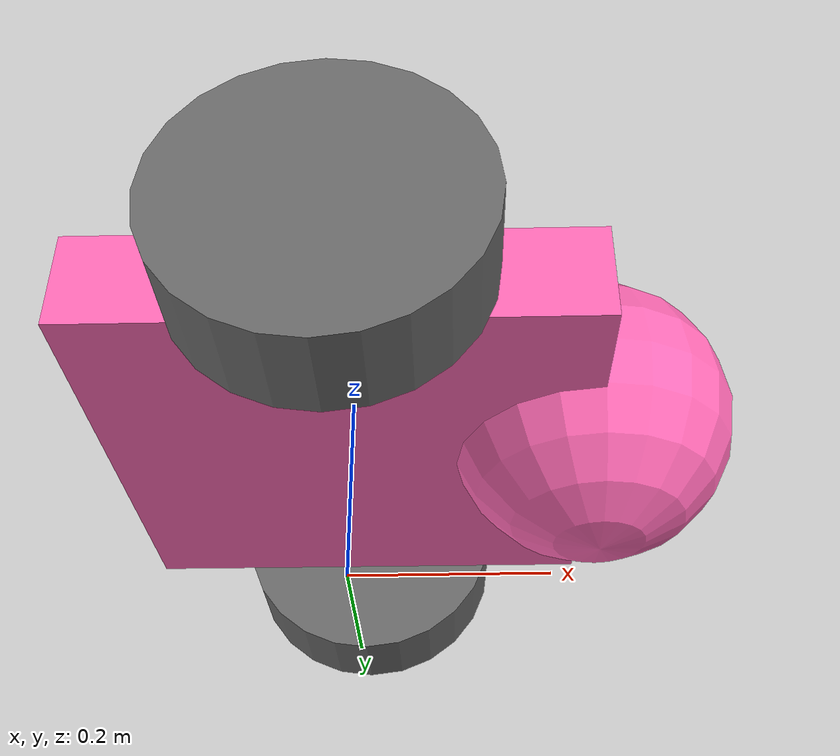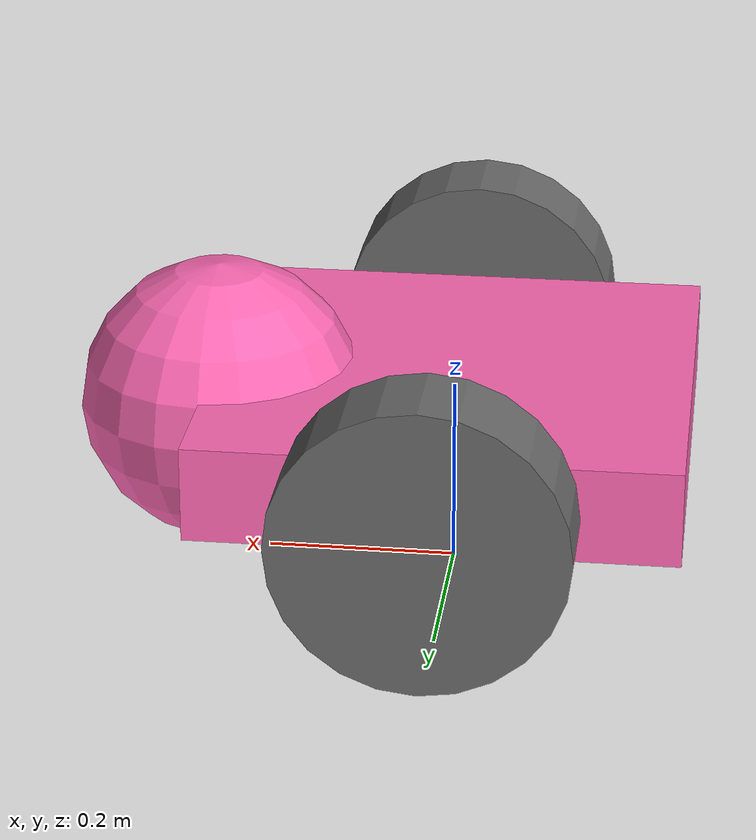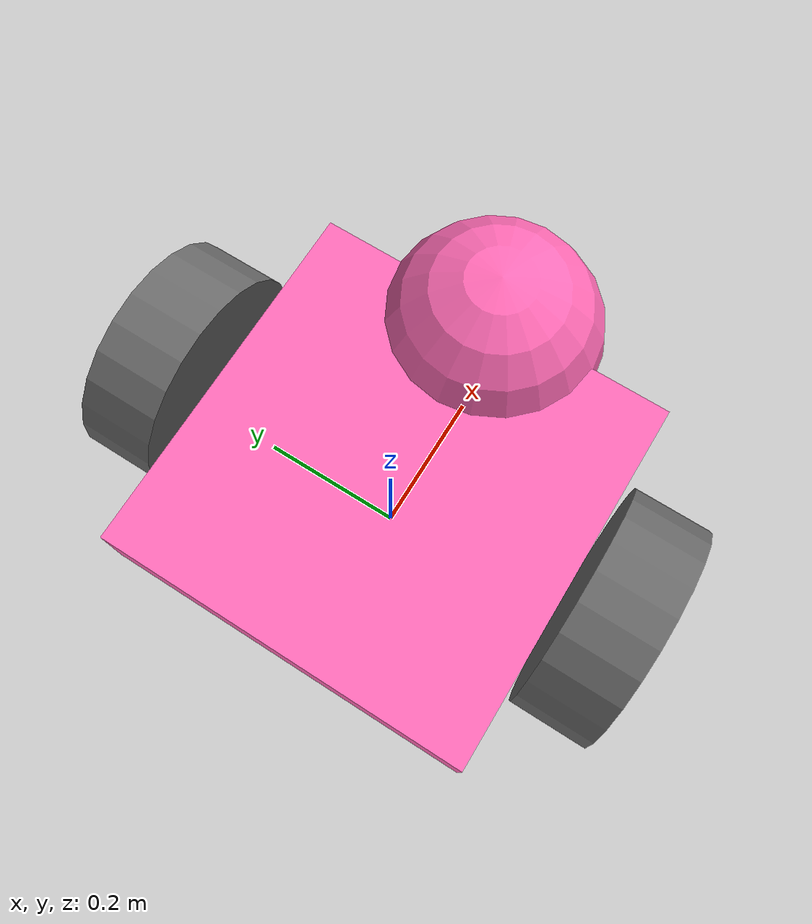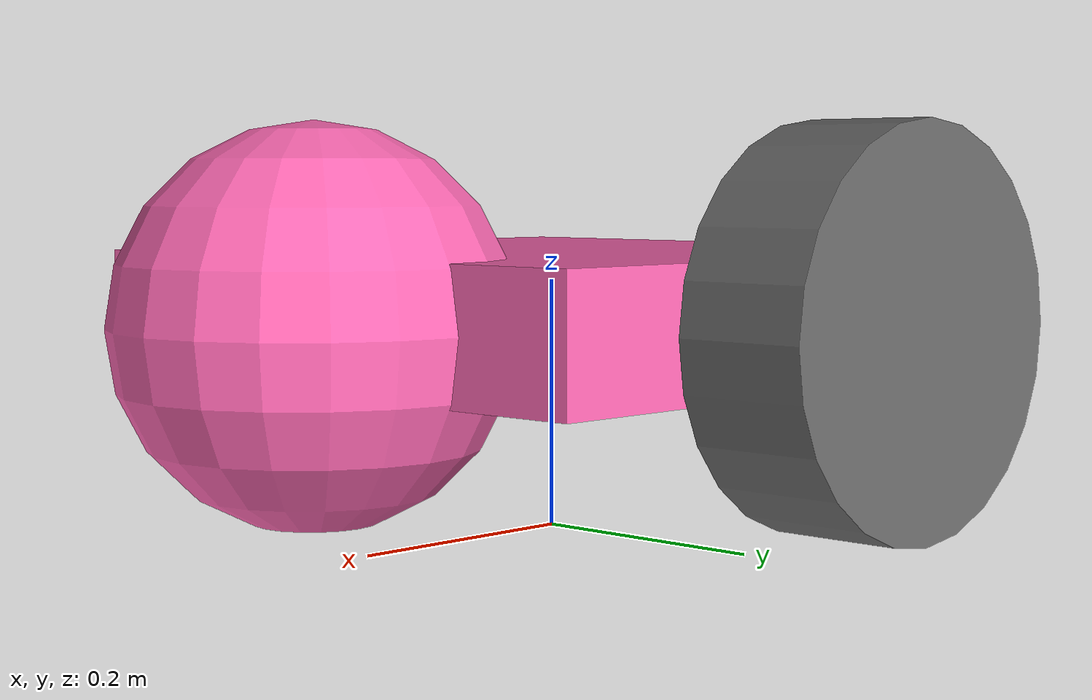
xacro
<?xml version="1.0"?>
<robot name="differential_robot" xmlns:xacro="http://www.ros.org/wiki/xacro">

  <!-- ARQUIVO PRINCIPAL                            -->
  <!-- Importa propriedades e macros, define o robô -->

  <!-- IMPORTAÇÃO DE ARQUIVOS -->
  <!--
    xacro:include importa o conteúdo de outros arquivos .xacro
    $(find package_name) retorna o caminho do pacote ROS
  -->
  <xacro:include filename="$(find rm_description)/urdf/properties.xacro"/>
  <xacro:include filename="$(find rm_description)/urdf/macros.xacro"/>
  <xacro:include filename="$(find rm_description)/urdf/gazebo_control.xacro" />

  <!-- BASE FOOTPRINT       -->
  <link name="base_footprint">
  </link>

  <link name="caixa">
  <visual>
    <origin xyz="0 0 0" rpy="0 0 0"/>
    <geometry> <box size=".5 .5 0.1"/> </geometry>
    <material name="pink"/>
  </visual>
  <collision>
    <origin xyz="0 0 0" rpy="0 0 0"/>
    <geometry> <box size=".5 .5 0.1"/> </geometry>
  </collision>
  <inertial>
    <origin xyz="0 0 0" rpy="0 0 0"/>
    <mass value="1.0"/>
    <inertia ixx="0.084166667" ixy="0" ixz="0" iyy="0.021666667" iyz="0" izz="0.1041666667"/>
  </inertial>
</link>

<joint name="base_caixa" type="fixed">
    <parent link="base_footprint"/>
    <child link="caixa"/>
    <origin xyz="0 0 ${0.025+.15}" rpy="0 0 0"/>
  </joint>

  <xacro:cylinder_link
    name="rodaL"
    length="${.1}"
    radius="${.15}"
    mass="${1.0}"
    material="gray"/>

  <joint name="caixa_rodaL" type="continuous">
    <parent link="caixa"/>
    <child link="rodaL"/>
    <origin xyz="0 ${(1/4)+.01+.1} 0" rpy="${pi/2} 0 0"/>
    <axis xyz="0 0 -1"/>
  </joint>

  <xacro:cylinder_link
    name="rodaR"
    length="${.1}"
    radius="${.15}"
    mass="${1.0}"
    material="gray"/>

  <joint name="caixa_rodaR" type="continuous">
    <parent link="caixa"/>
    <child link="rodaR"/>
    <origin xyz="0 -${(1/4)+.01} 0" rpy="${pi/2} 0 0"/>
    <axis xyz="0 0 -1"/>
  </joint>

  <xacro:sphere_link
    name="head"
    radius="${.15}"
    mass="${1.0}"
    material="pink"/>

  <joint name="caixa_head" type="fixed">
    <parent link="caixa"/>
    <child link="head"/>
    <origin xyz=".25 0 0" rpy="0 0 0"/>
  </joint>

</robot>

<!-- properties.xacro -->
<robot xmlns:xacro="http://www.ros.org/wiki/xacro">

  <!-- ARQUIVO DE PROPRIEDADES                      -->
  <!-- Contém todas as constantes e dimensões       -->

  <!-- Propriedades da Base -->
  <xacro:property name="base_radius" value="0.1"/>
  <xacro:property name="base_height" value="0.05"/>
  <xacro:property name="base_mass" value="2.0"/>

  <xacro:property name="caixa_size" value="1 0.5 0.1"/>
  <xacro:property name="caixa_mass" value="1.0"/>

  <!-- TAREFA: Defina as propriedades do Link 2 -->
  <xacro:property name="rodaL_length" value=".1"/>
  <xacro:property name="rodaL_radius" value=".15"/>
  <xacro:property name="rodaL_mass" value="1.0"/>

  <!-- Propriedades do End Effector -->
  <xacro:property name="head_radius" value="0.15"/>
  <xacro:property name="head_mass" value="1.0"/>

  <!-- MATERIAIS (cores)                            -->
  <material name="gray">
    <color rgba="0.412 0.412 0.412 1"/>
  </material>

  <material name="pink">
    <color rgba="1 0.412 0.706 1"/>
  </material>

</robot>

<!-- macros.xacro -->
<robot xmlns:xacro="http://www.ros.org/wiki/xacro">

  <xacro:macro name="cylinder_link" params="name length radius mass material">
    <link name="${name}">
      <visual>
        <origin xyz="0 0 ${length/2}" rpy="0 0 0"/>
        <geometry>
          <cylinder radius="${radius}" length="${length}"/>
        </geometry>
        <material name="${material}"/>
      </visual>

      <collision>
        <origin xyz="0 0 ${length/2}" rpy="0 0 0"/>
        <geometry>
          <cylinder radius="${radius}" length="${length}"/>
        </geometry>
      </collision>

      <inertial>
        <origin xyz="0 0 ${length/2}" rpy="0 0 0"/>
        <mass value="${mass}"/>
        <inertia
          ixx="${(1/12) * mass * (3*radius*radius + length*length)}"
          ixy="0.0" ixz="0.0"
          iyy="${(1/12) * mass * (3*radius*radius + length*length)}"
          iyz="0.0"
          izz="${(1/2) * mass * radius * radius}"/>
      </inertial>
    </link>
  </xacro:macro>

  <xacro:macro name="sphere_link" params="name radius mass material">
    <link name="${name}">
      <visual>
        <origin xyz="0 0 0" rpy="0 0 0"/>
        <geometry>
          <sphere radius="${radius}"/>
        </geometry>
        <material name="${material}"/>
      </visual>

      <collision>
        <origin xyz="0 0 0" rpy="0 0 0"/>
        <geometry>
          <sphere radius="${radius}"/>
        </geometry>
      </collision>

      <inertial>
        <origin xyz="0 0 0" rpy="0 0 0"/>
        <mass value="${mass}"/>
        <!-- Fórmula de inércia para esfera sólida -->
        <inertia
          ixx="${(2/5) * mass * radius * radius}"
          ixy="0.0" ixz="0.0"
          iyy="${(2/5) * mass * radius * radius}"
          iyz="0.0"
          izz="${(2/5) * mass * radius * radius}"/>
      </inertial>
    </link>
  </xacro:macro>

</robot>
